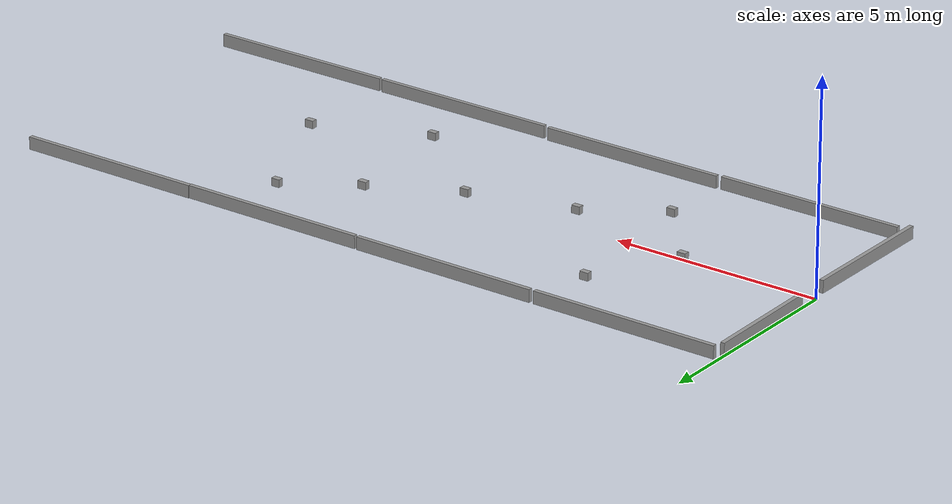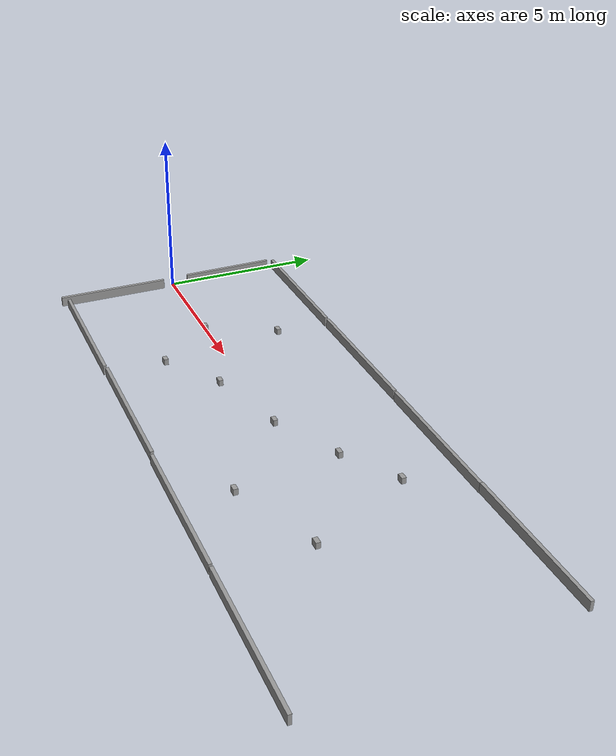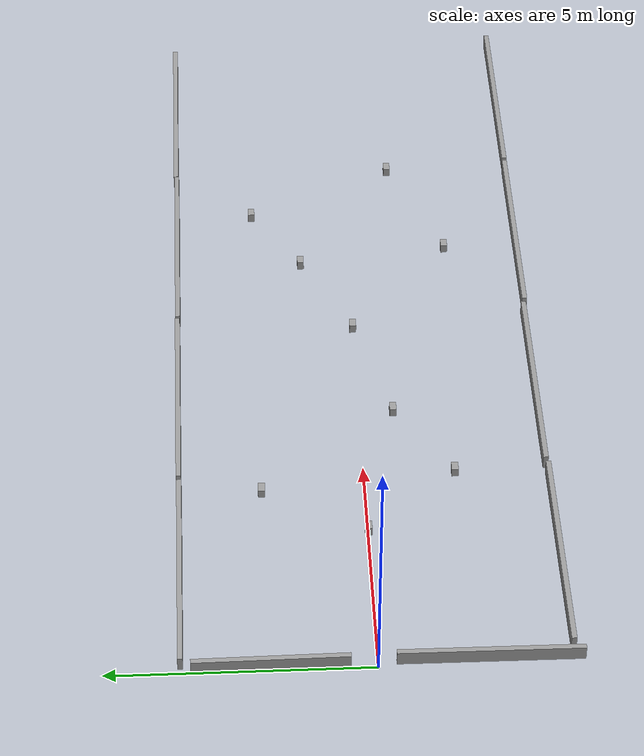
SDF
<sdf version="1.6">
 <world name="default">
  <scene>
   <grid>0</grid>
   <ambient>0.4 0.4 0.4 1</ambient>
   <background>0.7 0.7 0.7 1</background>
   <shadows>1</shadows>
  </scene>
  <light name="sun" type="directional">
   <pose>0 0 10 0 -0 0</pose>
   <diffuse>0.8 0.8 0.8 1</diffuse>
   <specular>0.2 0.2 0.2 1</specular>
   <attenuation>
    <range>1000</range>
    <constant>0.9</constant>
    <linear>0.01</linear>
    <quadratic>0.001</quadratic>
   </attenuation>
   <direction>-0.5 0.1 -0.9</direction>
  </light>
  <model name="ground">
   <link name="body">
    <collision name="geom">
     <geometry><plane><normal>0 0 1</normal><size>1 1</size></plane></geometry>
     <surface><friction><ode><mu>100</mu><mu2>50</mu2></ode></friction></surface>
    </collision>
   </link>
   <static>1</static>
  </model>
  <gravity>0 0 -9.8</gravity>
  <magnetic_field>6e-06 2.3e-05 -4.2e-05</magnetic_field>
  <atmosphere type="adiabatic"/>
  <physics name="default_physics" default="0" type="ode">
   <max_step_size>0.001</max_step_size>
   <real_time_factor>1</real_time_factor>
   <real_time_update_rate>1000</real_time_update_rate>
  </physics>
  <spherical_coordinates>
   <surface_model>EARTH_WGS84</surface_model>
   <latitude_deg>0</latitude_deg>
   <longitude_deg>0</longitude_deg>
   <elevation>0</elevation>
   <heading_deg>0</heading_deg>
  </spherical_coordinates>
  <model name="unit_box">
   <pose>3.3496 -0.012201 0.092536 1e-06 -3e-06 3.5e-05</pose>
   <link name="link">
    <inertial>
     <mass>1</mass>
     <inertia>
      <ixx>0.166667</ixx>
      <ixy>0</ixy>
      <ixz>0</ixz>
      <iyy>0.166667</iyy>
      <iyz>0</iyz>
      <izz>0.166667</izz>
     </inertia>
    </inertial>
    <collision name="collision">
     <geometry><box><size>0.208625 0.131935 0.185073</size></box></geometry>
    </collision>
    <visual name="visual">
     <geometry><box><size>0.208625 0.131935 0.185073</size></box></geometry>
     <material>
      <script><name>Gazebo/Grey</name><uri>file://media/materials/scripts/gazebo.material</uri></script>
     </material>
    </visual>
   </link>
  </model>
  <model name="unit_box_clone">
   <pose>4.83078 -1.77559 0.092536 0 -0 6.5e-05</pose>
   <link name="link">
    <inertial>
     <mass>1</mass>
     <inertia>
      <ixx>0.166667</ixx>
      <ixy>0</ixy>
      <ixz>0</ixz>
      <iyy>0.166667</iyy>
      <iyz>0</iyz>
      <izz>0.166667</izz>
     </inertia>
    </inertial>
    <collision name="collision">
     <geometry><box><size>0.208625 0.131935 0.185073</size></box></geometry>
    </collision>
    <visual name="visual">
     <geometry><box><size>0.208625 0.131935 0.185073</size></box></geometry>
     <material>
      <script><name>Gazebo/Grey</name><uri>file://media/materials/scripts/gazebo.material</uri></script>
     </material>
    </visual>
   </link>
  </model>
  <model name="unit_box_clone_0">
   <pose>6.53599 -0.67454 0.092537 0 3e-06 -2.1e-05</pose>
   <link name="link">
    <inertial>
     <mass>1</mass>
     <inertia>
      <ixx>0.166667</ixx>
      <ixy>0</ixy>
      <ixz>0</ixz>
      <iyy>0.166667</iyy>
      <iyz>0</iyz>
      <izz>0.166667</izz>
     </inertia>
    </inertial>
    <collision name="collision">
     <geometry><box><size>0.208625 0.131935 0.185073</size></box></geometry>
    </collision>
    <visual name="visual">
     <geometry><box><size>0.208625 0.131935 0.185073</size></box></geometry>
     <material>
      <script><name>Gazebo/Grey</name><uri>file://media/materials/scripts/gazebo.material</uri></script>
     </material>
    </visual>
   </link>
  </model>
  <model name="unit_box_clone_1">
   <pose>4.42197 2 0.092537 3e-06 -1e-06 5.6e-05</pose>
   <link name="link">
    <inertial>
     <mass>1</mass>
     <inertia>
      <ixx>0.166667</ixx>
      <ixy>0</ixy>
      <ixz>0</ixz>
      <iyy>0.166667</iyy>
      <iyz>0</iyz>
      <izz>0.166667</izz>
     </inertia>
    </inertial>
    <collision name="collision">
     <geometry><box><size>0.208625 0.131935 0.185073</size></box></geometry>
    </collision>
    <visual name="visual">
     <geometry><box><size>0.208625 0.131935 0.185073</size></box></geometry>
     <material>
      <script><name>Gazebo/Grey</name><uri>file://media/materials/scripts/gazebo.material</uri></script>
     </material>
    </visual>
   </link>
  </model>
  <model name="unit_box_clone_2">
   <pose>9 0 0.092536 0 -0 4e-05</pose>
   <link name="link">
    <inertial>
     <mass>1</mass>
     <inertia>
      <ixx>0.166667</ixx>
      <ixy>0</ixy>
      <ixz>0</ixz>
      <iyy>0.166667</iyy>
      <iyz>0</iyz>
      <izz>0.166667</izz>
     </inertia>
    </inertial>
    <collision name="collision">
     <geometry><box><size>0.208625 0.131935 0.185073</size></box></geometry>
    </collision>
    <visual name="visual">
     <geometry><box><size>0.208625 0.131935 0.185073</size></box></geometry>
     <material>
      <script><name>Gazebo/Grey</name><uri>file://media/materials/scripts/gazebo.material</uri></script>
     </material>
    </visual>
   </link>
  </model>
  <model name="unit_box_0">
   <pose>2.53369 -3.59011 0.147284 0.00028 -0.000676 0.000867</pose>
   <link name="link">
    <inertial>
     <mass>1</mass>
     <inertia>
      <ixx>0.166667</ixx>
      <ixy>0</ixy>
      <ixz>0</ixz>
      <iyy>0.166667</iyy>
      <iyz>0</iyz>
      <izz>0.166667</izz>
     </inertia>
    </inertial>
    <collision name="collision">
     <geometry><box><size>4.48059 0.0980665 0.297572</size></box></geometry>
    </collision>
    <visual name="visual">
     <geometry><box><size>4.48059 0.0980665 0.297572</size></box></geometry>
     <material>
      <script><name>Gazebo/Grey</name><uri>file://media/materials/scripts/gazebo.material</uri></script>
     </material>
    </visual>
   </link>
  </model>
  <model name="unit_box_0_clone">
   <pose>7.12105 -3.55676 0.148533 -0.000753 0.00013 -0.000159</pose>
   <link name="link">
    <inertial>
     <mass>1</mass>
     <inertia>
      <ixx>0.166667</ixx>
      <ixy>0</ixy>
      <ixz>0</ixz>
      <iyy>0.166667</iyy>
      <iyz>0</iyz>
      <izz>0.166667</izz>
     </inertia>
    </inertial>
    <collision name="collision"><geometry><box><size>4.4806 0.098067 0.297572</size></box></geometry></collision>
    <visual name="visual">
     <geometry><box><size>4.4806 0.098067 0.297572</size></box></geometry>
     <material>
      <script><name>Gazebo/Grey</name><uri>file://media/materials/scripts/gazebo.material</uri></script>
     </material>
    </visual>
   </link>
  </model>
  <model name="unit_box_0_clone_0">
   <pose>11.7179 -3.59275 0.148278 0.000665 0.000241 -1e-06</pose>
   <link name="link">
    <inertial>
     <mass>1</mass>
     <inertia>
      <ixx>0.166667</ixx>
      <ixy>0</ixy>
      <ixz>0</ixz>
      <iyy>0.166667</iyy>
      <iyz>0</iyz>
      <izz>0.166667</izz>
     </inertia>
    </inertial>
    <collision name="collision"><geometry><box><size>4.4806 0.098067 0.297572</size></box></geometry></collision>
    <visual name="visual">
     <geometry><box><size>4.4806 0.098067 0.297572</size></box></geometry>
     <material>
      <script><name>Gazebo/Grey</name><uri>file://media/materials/scripts/gazebo.material</uri></script>
     </material>
    </visual>
   </link>
  </model>
  <model name="unit_box_0_clone_1">
   <pose>16.2768 -3.59862 0.147216 9.8e-05 0.000703 -1.1e-05</pose>
   <link name="link">
    <inertial>
     <mass>1</mass>
     <inertia>
      <ixx>0.166667</ixx>
      <ixy>0</ixy>
      <ixz>0</ixz>
      <iyy>0.166667</iyy>
      <iyz>0</iyz>
      <izz>0.166667</izz>
     </inertia>
    </inertial>
    <collision name="collision"><geometry><box><size>4.4806 0.098067 0.297572</size></box></geometry></collision>
    <visual name="visual">
     <geometry><box><size>4.4806 0.098067 0.297572</size></box></geometry>
     <material>
      <script><name>Gazebo/Grey</name><uri>file://media/materials/scripts/gazebo.material</uri></script>
     </material>
    </visual>
   </link>
  </model>
  <model name="unit_box_0_clone_2">
   <pose>2.33637 3.59087 0.148392 0.000827 0.000194 0.000337</pose>
   <link name="link">
    <inertial>
     <mass>1</mass>
     <inertia>
      <ixx>0.166667</ixx>
      <ixy>0</ixy>
      <ixz>0</ixz>
      <iyy>0.166667</iyy>
      <iyz>0</iyz>
      <izz>0.166667</izz>
     </inertia>
    </inertial>
    <collision name="collision"><geometry><box><size>4.4806 0.098067 0.297572</size></box></geometry></collision>
    <visual name="visual">
     <geometry><box><size>4.4806 0.098067 0.297572</size></box></geometry>
     <material>
      <script><name>Gazebo/Grey</name><uri>file://media/materials/scripts/gazebo.material</uri></script>
     </material>
    </visual>
   </link>
  </model>
  <model name="unit_box_0_clone_3">
   <pose>6.91631 3.59821 0.14871 0.000544 -4.6e-05 -1e-06</pose>
   <link name="link">
    <inertial>
     <mass>1</mass>
     <inertia>
      <ixx>0.166667</ixx>
      <ixy>0</ixy>
      <ixz>0</ixz>
      <iyy>0.166667</iyy>
      <iyz>0</iyz>
      <izz>0.166667</izz>
     </inertia>
    </inertial>
    <collision name="collision"><geometry><box><size>4.4806 0.098067 0.297572</size></box></geometry></collision>
    <visual name="visual">
     <geometry><box><size>4.4806 0.098067 0.297572</size></box></geometry>
     <material>
      <script><name>Gazebo/Grey</name><uri>file://media/materials/scripts/gazebo.material</uri></script>
     </material>
    </visual>
   </link>
  </model>
  <model name="unit_box_0_clone_4">
   <pose>11.4591 3.5911 0.14862 -0.000683 8.9e-05 1e-06</pose>
   <link name="link">
    <inertial>
     <mass>1</mass>
     <inertia>
      <ixx>0.166667</ixx>
      <ixy>0</ixy>
      <ixz>0</ixz>
      <iyy>0.166667</iyy>
      <iyz>0</iyz>
      <izz>0.166667</izz>
     </inertia>
    </inertial>
    <collision name="collision"><geometry><box><size>4.4806 0.098067 0.297572</size></box></geometry></collision>
    <visual name="visual">
     <geometry><box><size>4.4806 0.098067 0.297572</size></box></geometry>
     <material>
      <script><name>Gazebo/Grey</name><uri>file://media/materials/scripts/gazebo.material</uri></script>
     </material>
    </visual>
   </link>
  </model>
  <model name="unit_box_0_clone_5">
   <pose>15.9438 3.60548 0.148483 -0.000723 -0.000151 -0</pose>
   <link name="link">
    <inertial>
     <mass>1</mass>
     <inertia>
      <ixx>0.166667</ixx>
      <ixy>0</ixy>
      <ixz>0</ixz>
      <iyy>0.166667</iyy>
      <iyz>0</iyz>
      <izz>0.166667</izz>
     </inertia>
    </inertial>
    <collision name="collision"><geometry><box><size>4.4806 0.098067 0.297572</size></box></geometry></collision>
    <visual name="visual">
     <geometry><box><size>4.4806 0.098067 0.297572</size></box></geometry>
     <material>
      <script><name>Gazebo/Grey</name><uri>file://media/materials/scripts/gazebo.material</uri></script>
     </material>
    </visual>
   </link>
  </model>
  <model name="unit_box_clone_0_clone">
   <pose>11.412 -2.06211 0.092536 1e-06 4e-06 7.9e-05</pose>
   <link name="link">
    <inertial>
     <mass>1</mass>
     <inertia>
      <ixx>0.166667</ixx>
      <ixy>0</ixy>
      <ixz>0</ixz>
      <iyy>0.166667</iyy>
      <iyz>0</iyz>
      <izz>0.166667</izz>
     </inertia>
    </inertial>
    <collision name="collision">
     <geometry><box><size>0.208625 0.131935 0.185073</size></box></geometry>
    </collision>
    <visual name="visual">
     <geometry><box><size>0.208625 0.131935 0.185073</size></box></geometry>
     <material>
      <script><name>Gazebo/Grey</name><uri>file://media/materials/scripts/gazebo.material</uri></script>
     </material>
    </visual>
   </link>
  </model>
  <model name="unit_box_clone_0_clone_0">
   <pose>11 1 0.092536 2e-06 3e-06 -1.1e-05</pose>
   <link name="link">
    <inertial>
     <mass>1</mass>
     <inertia>
      <ixx>0.166667</ixx>
      <ixy>0</ixy>
      <ixz>0</ixz>
      <iyy>0.166667</iyy>
      <iyz>0</iyz>
      <izz>0.166667</izz>
     </inertia>
    </inertial>
    <collision name="collision">
     <geometry><box><size>0.208625 0.131935 0.185073</size></box></geometry>
    </collision>
    <visual name="visual">
     <geometry><box><size>0.208625 0.131935 0.185073</size></box></geometry>
     <material>
      <script><name>Gazebo/Grey</name><uri>file://media/materials/scripts/gazebo.material</uri></script>
     </material>
    </visual>
   </link>
  </model>
  <model name="unit_box_clone_0_clone_1">
   <pose>14 -1 0.092536 4e-06 3e-06 6e-06</pose>
   <link name="link">
    <inertial>
     <mass>1</mass>
     <inertia>
      <ixx>0.166667</ixx>
      <ixy>0</ixy>
      <ixz>0</ixz>
      <iyy>0.166667</iyy>
      <iyz>0</iyz>
      <izz>0.166667</izz>
     </inertia>
    </inertial>
    <collision name="collision">
     <geometry><box><size>0.208625 0.131935 0.185073</size></box></geometry>
    </collision>
    <visual name="visual">
     <geometry><box><size>0.208625 0.131935 0.185073</size></box></geometry>
     <material>
      <script><name>Gazebo/Grey</name><uri>file://media/materials/scripts/gazebo.material</uri></script>
     </material>
    </visual>
   </link>
  </model>
  <model name="unit_box_clone_0_clone_2">
   <pose>12.5855 2 0.092536 0 -0 5.2e-05</pose>
   <link name="link">
    <inertial>
     <mass>1</mass>
     <inertia>
      <ixx>0.166667</ixx>
      <ixy>0</ixy>
      <ixz>0</ixz>
      <iyy>0.166667</iyy>
      <iyz>0</iyz>
      <izz>0.166667</izz>
     </inertia>
    </inertial>
    <collision name="collision">
     <geometry><box><size>0.208625 0.131935 0.185073</size></box></geometry>
    </collision>
    <visual name="visual">
     <geometry><box><size>0.208625 0.131935 0.185073</size></box></geometry>
     <material>
      <script><name>Gazebo/Grey</name><uri>file://media/materials/scripts/gazebo.material</uri></script>
     </material>
    </visual>
   </link>
  </model>
  <model name="unit_box_0_clone_6">
   <pose>0.100822 -2.06657 0.148179 -7e-06 0.000353 1.56708</pose>
   <link name="link">
    <inertial>
     <mass>1</mass>
     <inertia>
      <ixx>0.166667</ixx>
      <ixy>0</ixy>
      <ixz>0</ixz>
      <iyy>0.166667</iyy>
      <iyz>0</iyz>
      <izz>0.166667</izz>
     </inertia>
    </inertial>
    <collision name="collision"><geometry><box><size>3.44812 0.098067 0.297572</size></box></geometry></collision>
    <visual name="visual">
     <geometry><box><size>3.44812 0.098067 0.297572</size></box></geometry>
     <material>
      <script><name>Gazebo/Grey</name><uri>file://media/materials/scripts/gazebo.material</uri></script>
     </material>
    </visual>
   </link>
  </model>
  <model name="unit_box_0_clone_6_clone">
   <pose>0.056276 1.94549 0.148495 5e-06 0.0002 1.58241</pose>
   <link name="link">
    <inertial>
     <mass>1</mass>
     <inertia>
      <ixx>0.166667</ixx>
      <ixy>0</ixy>
      <ixz>0</ixz>
      <iyy>0.166667</iyy>
      <iyz>0</iyz>
      <izz>0.166667</izz>
     </inertia>
    </inertial>
    <collision name="collision"><geometry><box><size>2.91505 0.098067 0.297572</size></box></geometry></collision>
    <visual name="visual">
     <geometry><box><size>2.91505 0.098067 0.297572</size></box></geometry>
     <material>
      <script><name>Gazebo/Grey</name><uri>file://media/materials/scripts/gazebo.material</uri></script>
     </material>
    </visual>
   </link>
  </model>
 </world>
</sdf>
